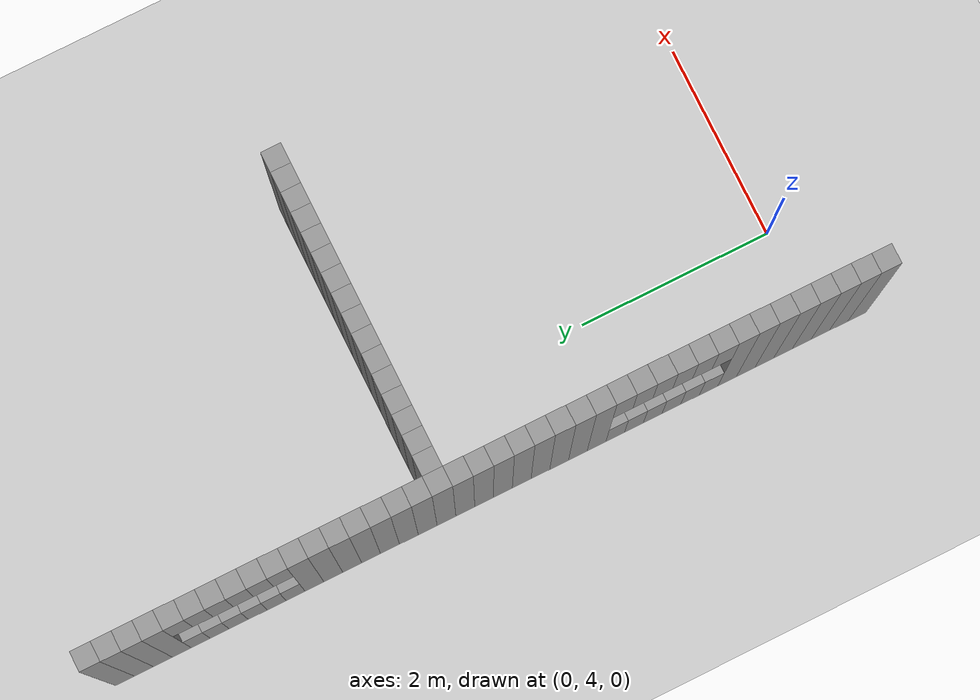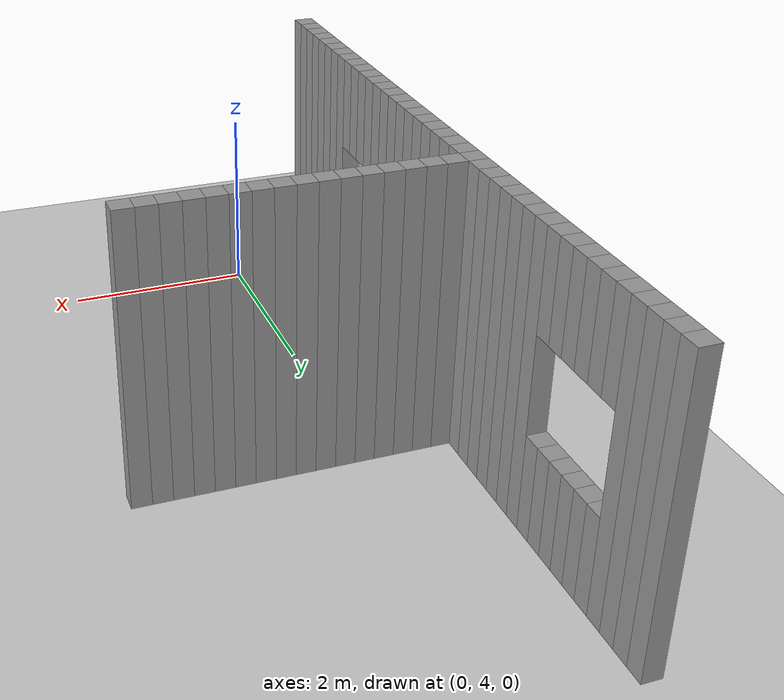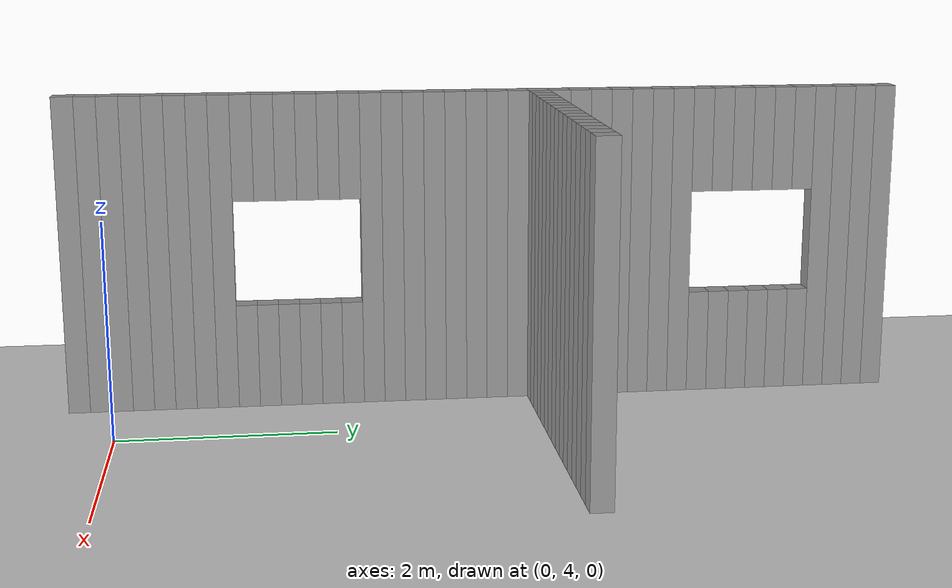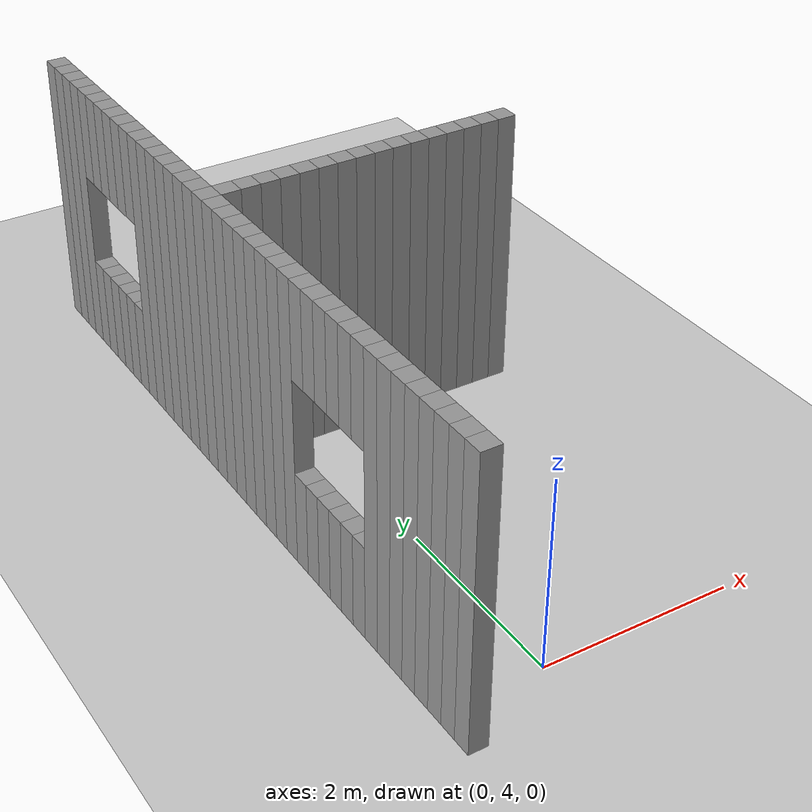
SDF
<sdf version="1.7">
 <world name="default">
  <model name="ground_plane">
   <static>1</static>
   <link name="link">
    <collision name="collision">
     <geometry><plane><normal>0 0 1</normal><size>100 100</size></plane></geometry>
     <surface>
      <contact><collide_bitmask>65535</collide_bitmask></contact>
      <friction><ode><mu>100</mu><mu2>50</mu2></ode></friction>
     </surface>
    </collision>
    <visual name="visual">
     <cast_shadows>0</cast_shadows>
     <geometry><plane><normal>0 0 1</normal><size>100 100</size></plane></geometry>
     <material>
      <script><uri>file://media/materials/scripts/gazebo.material</uri><name>Gazebo/Grey</name></script>
     </material>
    </visual>
   </link>
  </model>
  <model name="05222">
   <pose>-1 -1 0 0 -0 0</pose>
   <link name="Wall_286">
    <collision name="Wall_286_Collision">
     <geometry><box><size>0.2 0.2 3</size></box></geometry>
     <pose>0 0 1.5 0 -0 0</pose>
    </collision>
    <visual name="Wall_286_Visual">
     <pose>0 0 1.5 0 -0 0</pose>
     <geometry><box><size>0.2 0.2 3</size></box></geometry>
     <material>
      <script><uri>file://media/materials/scripts/gazebo.material</uri><name>Gazebo/Grey</name></script>
      <ambient>1 1 1 1</ambient>
     </material>
     <meta><layer>0</layer></meta>
    </visual>
    <pose>0.0 4.6000000000000005 0 0 -0 0</pose>
   </link>
   <link name="Wall_289">
    <collision name="Wall_289_Collision">
     <geometry><box><size>0.2 0.2 3</size></box></geometry>
     <pose>0 0 1.5 0 -0 0</pose>
    </collision>
    <visual name="Wall_289_Visual">
     <pose>0 0 1.5 0 -0 0</pose>
     <geometry><box><size>0.2 0.2 3</size></box></geometry>
     <material>
      <script><uri>file://media/materials/scripts/gazebo.material</uri><name>Gazebo/Grey</name></script>
      <ambient>1 1 1 1</ambient>
     </material>
     <meta><layer>0</layer></meta>
    </visual>
    <pose>0.0 4.800000000000001 0 0 -0 0</pose>
   </link>
   <link name="Wall_292">
    <collision name="Wall_292_Collision">
     <geometry><box><size>0.2 0.2 3</size></box></geometry>
     <pose>0 0 1.5 0 -0 0</pose>
    </collision>
    <visual name="Wall_292_Visual">
     <pose>0 0 1.5 0 -0 0</pose>
     <geometry><box><size>0.2 0.2 3</size></box></geometry>
     <material>
      <script><uri>file://media/materials/scripts/gazebo.material</uri><name>Gazebo/Grey</name></script>
      <ambient>1 1 1 1</ambient>
     </material>
     <meta><layer>0</layer></meta>
    </visual>
    <pose>0.0 5.0 0 0 -0 0</pose>
   </link>
   <link name="Wall_295">
    <collision name="Wall_295_Collision">
     <geometry><box><size>0.2 0.2 3</size></box></geometry>
     <pose>0 0 1.5 0 -0 0</pose>
    </collision>
    <visual name="Wall_295_Visual">
     <pose>0 0 1.5 0 -0 0</pose>
     <geometry><box><size>0.2 0.2 3</size></box></geometry>
     <material>
      <script><uri>file://media/materials/scripts/gazebo.material</uri><name>Gazebo/Grey</name></script>
      <ambient>1 1 1 1</ambient>
     </material>
     <meta><layer>0</layer></meta>
    </visual>
    <pose>0.0 5.2 0 0 -0 0</pose>
   </link>
   <link name="Wall_298">
    <collision name="Wall_298_Collision">
     <geometry><box><size>0.2 0.2 3</size></box></geometry>
     <pose>0 0 1.5 0 -0 0</pose>
    </collision>
    <visual name="Wall_298_Visual">
     <pose>0 0 1.5 0 -0 0</pose>
     <geometry><box><size>0.2 0.2 3</size></box></geometry>
     <material>
      <script><uri>file://media/materials/scripts/gazebo.material</uri><name>Gazebo/Grey</name></script>
      <ambient>1 1 1 1</ambient>
     </material>
     <meta><layer>0</layer></meta>
    </visual>
    <pose>0.0 5.4 0 0 -0 0</pose>
   </link>
   <link name="Wall_301">
    <collision name="Wall_301_Collision">
     <geometry><box><size>0.2 0.2 3</size></box></geometry>
     <pose>0 0 1.5 0 -0 0</pose>
    </collision>
    <visual name="Wall_301_Visual">
     <pose>0 0 1.5 0 -0 0</pose>
     <geometry><box><size>0.2 0.2 3</size></box></geometry>
     <material>
      <script><uri>file://media/materials/scripts/gazebo.material</uri><name>Gazebo/Grey</name></script>
      <ambient>1 1 1 1</ambient>
     </material>
     <meta><layer>0</layer></meta>
    </visual>
    <pose>0.0 5.6000000000000005 0 0 -0 0</pose>
   </link>
   <link name="Wall_303">
    <collision name="Wall_303_Collision">
     <geometry><box><size>0.2 0.2 3</size></box></geometry>
     <pose>0 0 1.5 0 -0 0</pose>
    </collision>
    <visual name="Wall_303_Visual">
     <pose>0 0 1.5 0 -0 0</pose>
     <geometry><box><size>0.2 0.2 3</size></box></geometry>
     <material>
      <script><uri>file://media/materials/scripts/gazebo.material</uri><name>Gazebo/Grey</name></script>
      <ambient>1 1 1 1</ambient>
     </material>
     <meta><layer>0</layer></meta>
    </visual>
    <pose>0.0 5.800000000000001 0 0 -0 0</pose>
   </link>
   <link name="Wall_305">
    <collision name="Wall_305_Collision">
     <geometry><box><size>0.2 0.2 3</size></box></geometry>
     <pose>0 0 1.5 0 -0 0</pose>
    </collision>
    <visual name="Wall_305_Visual">
     <pose>0 0 1.5 0 -0 0</pose>
     <geometry><box><size>0.2 0.2 3</size></box></geometry>
     <material>
      <script><uri>file://media/materials/scripts/gazebo.material</uri><name>Gazebo/Grey</name></script>
      <ambient>1 1 1 1</ambient>
     </material>
     <meta><layer>0</layer></meta>
    </visual>
    <pose>0.0 6.0 0 0 -0 0</pose>
   </link>
   <link name="Wall_307">
    <collision name="Wall_307_Collision">
     <geometry><box><size>0.2 0.2 1.0</size></box></geometry>
     <pose>0 0 0.5 0 -0 0</pose>
    </collision>
    <visual name="Wall_307_Visual">
     <pose>0 0 0.5 0 -0 0</pose>
     <geometry><box><size>0.2 0.2 1.0</size></box></geometry>
     <material>
      <script><uri>file://media/materials/scripts/gazebo.material</uri><name>Gazebo/Grey</name></script>
      <ambient>1 1 1 1</ambient>
     </material>
     <meta><layer>0</layer></meta>
    </visual>
    <pose>0.0 6.2 0 0 -0 0</pose>
   </link>
   <link name="Wall_308">
    <collision name="Wall_308_Collision">
     <geometry><box><size>0.2 0.2 1.0</size></box></geometry>
     <pose>0 0 2.5 0 -0 0</pose>
    </collision>
    <visual name="Wall_308_Visual">
     <pose>0 0 2.5 0 -0 0</pose>
     <geometry><box><size>0.2 0.2 1.0</size></box></geometry>
     <material>
      <script><uri>file://media/materials/scripts/gazebo.material</uri><name>Gazebo/Grey</name></script>
      <ambient>1 1 1 1</ambient>
     </material>
     <meta><layer>0</layer></meta>
    </visual>
    <pose>0.0 6.2 0 0 -0 0</pose>
   </link>
   <link name="Window_307">
    <collision name="Window_307_Collision">
     <geometry><box><size>0.2 0.2 1.0</size></box></geometry>
     <pose>0 0 1.5 0 -0 0</pose>
    </collision>
    <visual name="Wall_308_Visual">
     <pose>0 0 2.5 0 -0 0</pose>
     <geometry><box><size>0.2 0.2 1.0</size></box></geometry>
     <material>
      <script><uri>file://media/materials/scripts/gazebo.material</uri><name>Gazebo/Grey</name></script>
      <ambient>1 1 1 1</ambient>
     </material>
     <meta><layer>0</layer></meta>
    </visual>
    <pose>0.0 6.2 0 0 -0 0</pose>
   </link>
   <link name="Wall_329">
    <collision name="Wall_329_Collision">
     <geometry><box><size>0.2 0.2 1.0</size></box></geometry>
     <pose>0 0 0.5 0 -0 0</pose>
    </collision>
    <visual name="Wall_329_Visual">
     <pose>0 0 0.5 0 -0 0</pose>
     <geometry><box><size>0.2 0.2 1.0</size></box></geometry>
     <material>
      <script><uri>file://media/materials/scripts/gazebo.material</uri><name>Gazebo/Grey</name></script>
      <ambient>1 1 1 1</ambient>
     </material>
     <meta><layer>0</layer></meta>
    </visual>
    <pose>0.0 6.4 0 0 -0 0</pose>
   </link>
   <link name="Wall_330">
    <collision name="Wall_330_Collision">
     <geometry><box><size>0.2 0.2 1.0</size></box></geometry>
     <pose>0 0 2.5 0 -0 0</pose>
    </collision>
    <visual name="Wall_330_Visual">
     <pose>0 0 2.5 0 -0 0</pose>
     <geometry><box><size>0.2 0.2 1.0</size></box></geometry>
     <material>
      <script><uri>file://media/materials/scripts/gazebo.material</uri><name>Gazebo/Grey</name></script>
      <ambient>1 1 1 1</ambient>
     </material>
     <meta><layer>0</layer></meta>
    </visual>
    <pose>0.0 6.4 0 0 -0 0</pose>
   </link>
   <link name="Window_329">
    <collision name="Window_329_Collision">
     <geometry><box><size>0.2 0.2 1.0</size></box></geometry>
     <pose>0 0 1.5 0 -0 0</pose>
    </collision>
    <visual name="Wall_330_Visual">
     <pose>0 0 2.5 0 -0 0</pose>
     <geometry><box><size>0.2 0.2 1.0</size></box></geometry>
     <material>
      <script><uri>file://media/materials/scripts/gazebo.material</uri><name>Gazebo/Grey</name></script>
      <ambient>1 1 1 1</ambient>
     </material>
     <meta><layer>0</layer></meta>
    </visual>
    <pose>0.0 6.4 0 0 -0 0</pose>
   </link>
   <link name="Wall_333">
    <collision name="Wall_333_Collision">
     <geometry><box><size>0.2 0.2 1.0</size></box></geometry>
     <pose>0 0 0.5 0 -0 0</pose>
    </collision>
    <visual name="Wall_333_Visual">
     <pose>0 0 0.5 0 -0 0</pose>
     <geometry><box><size>0.2 0.2 1.0</size></box></geometry>
     <material>
      <script><uri>file://media/materials/scripts/gazebo.material</uri><name>Gazebo/Grey</name></script>
      <ambient>1 1 1 1</ambient>
     </material>
     <meta><layer>0</layer></meta>
    </visual>
    <pose>0.0 6.6000000000000005 0 0 -0 0</pose>
   </link>
   <link name="Wall_334">
    <collision name="Wall_334_Collision">
     <geometry><box><size>0.2 0.2 1.0</size></box></geometry>
     <pose>0 0 2.5 0 -0 0</pose>
    </collision>
    <visual name="Wall_334_Visual">
     <pose>0 0 2.5 0 -0 0</pose>
     <geometry><box><size>0.2 0.2 1.0</size></box></geometry>
     <material>
      <script><uri>file://media/materials/scripts/gazebo.material</uri><name>Gazebo/Grey</name></script>
      <ambient>1 1 1 1</ambient>
     </material>
     <meta><layer>0</layer></meta>
    </visual>
    <pose>0.0 6.6000000000000005 0 0 -0 0</pose>
   </link>
   <link name="Window_333">
    <collision name="Window_333_Collision">
     <geometry><box><size>0.2 0.2 1.0</size></box></geometry>
     <pose>0 0 1.5 0 -0 0</pose>
    </collision>
    <visual name="Wall_334_Visual">
     <pose>0 0 2.5 0 -0 0</pose>
     <geometry><box><size>0.2 0.2 1.0</size></box></geometry>
     <material>
      <script><uri>file://media/materials/scripts/gazebo.material</uri><name>Gazebo/Grey</name></script>
      <ambient>1 1 1 1</ambient>
     </material>
     <meta><layer>0</layer></meta>
    </visual>
    <pose>0.0 6.6000000000000005 0 0 -0 0</pose>
   </link>
   <link name="Wall_337">
    <collision name="Wall_337_Collision">
     <geometry><box><size>0.2 0.2 1.0</size></box></geometry>
     <pose>0 0 0.5 0 -0 0</pose>
    </collision>
    <visual name="Wall_337_Visual">
     <pose>0 0 0.5 0 -0 0</pose>
     <geometry><box><size>0.2 0.2 1.0</size></box></geometry>
     <material>
      <script><uri>file://media/materials/scripts/gazebo.material</uri><name>Gazebo/Grey</name></script>
      <ambient>1 1 1 1</ambient>
     </material>
     <meta><layer>0</layer></meta>
    </visual>
    <pose>0.0 6.800000000000001 0 0 -0 0</pose>
   </link>
   <link name="Wall_338">
    <collision name="Wall_338_Collision">
     <geometry><box><size>0.2 0.2 1.0</size></box></geometry>
     <pose>0 0 2.5 0 -0 0</pose>
    </collision>
    <visual name="Wall_338_Visual">
     <pose>0 0 2.5 0 -0 0</pose>
     <geometry><box><size>0.2 0.2 1.0</size></box></geometry>
     <material>
      <script><uri>file://media/materials/scripts/gazebo.material</uri><name>Gazebo/Grey</name></script>
      <ambient>1 1 1 1</ambient>
     </material>
     <meta><layer>0</layer></meta>
    </visual>
    <pose>0.0 6.800000000000001 0 0 -0 0</pose>
   </link>
   <link name="Window_337">
    <collision name="Window_337_Collision">
     <geometry><box><size>0.2 0.2 1.0</size></box></geometry>
     <pose>0 0 1.5 0 -0 0</pose>
    </collision>
    <visual name="Wall_338_Visual">
     <pose>0 0 2.5 0 -0 0</pose>
     <geometry><box><size>0.2 0.2 1.0</size></box></geometry>
     <material>
      <script><uri>file://media/materials/scripts/gazebo.material</uri><name>Gazebo/Grey</name></script>
      <ambient>1 1 1 1</ambient>
     </material>
     <meta><layer>0</layer></meta>
    </visual>
    <pose>0.0 6.800000000000001 0 0 -0 0</pose>
   </link>
   <link name="Wall_342">
    <collision name="Wall_342_Collision">
     <geometry><box><size>0.2 0.2 1.0</size></box></geometry>
     <pose>0 0 0.5 0 -0 0</pose>
    </collision>
    <visual name="Wall_342_Visual">
     <pose>0 0 0.5 0 -0 0</pose>
     <geometry><box><size>0.2 0.2 1.0</size></box></geometry>
     <material>
      <script><uri>file://media/materials/scripts/gazebo.material</uri><name>Gazebo/Grey</name></script>
      <ambient>1 1 1 1</ambient>
     </material>
     <meta><layer>0</layer></meta>
    </visual>
    <pose>0.0 7.0 0 0 -0 0</pose>
   </link>
   <link name="Wall_343">
    <collision name="Wall_343_Collision">
     <geometry><box><size>0.2 0.2 1.0</size></box></geometry>
     <pose>0 0 2.5 0 -0 0</pose>
    </collision>
    <visual name="Wall_343_Visual">
     <pose>0 0 2.5 0 -0 0</pose>
     <geometry><box><size>0.2 0.2 1.0</size></box></geometry>
     <material>
      <script><uri>file://media/materials/scripts/gazebo.material</uri><name>Gazebo/Grey</name></script>
      <ambient>1 1 1 1</ambient>
     </material>
     <meta><layer>0</layer></meta>
    </visual>
    <pose>0.0 7.0 0 0 -0 0</pose>
   </link>
   <link name="Window_342">
    <collision name="Window_342_Collision">
     <geometry><box><size>0.2 0.2 1.0</size></box></geometry>
     <pose>0 0 1.5 0 -0 0</pose>
    </collision>
    <visual name="Wall_343_Visual">
     <pose>0 0 2.5 0 -0 0</pose>
     <geometry><box><size>0.2 0.2 1.0</size></box></geometry>
     <material>
      <script><uri>file://media/materials/scripts/gazebo.material</uri><name>Gazebo/Grey</name></script>
      <ambient>1 1 1 1</ambient>
     </material>
     <meta><layer>0</layer></meta>
    </visual>
    <pose>0.0 7.0 0 0 -0 0</pose>
   </link>
   <link name="Wall_347">
    <collision name="Wall_347_Collision">
     <geometry><box><size>0.2 0.2 1.0</size></box></geometry>
     <pose>0 0 0.5 0 -0 0</pose>
    </collision>
    <visual name="Wall_347_Visual">
     <pose>0 0 0.5 0 -0 0</pose>
     <geometry><box><size>0.2 0.2 1.0</size></box></geometry>
     <material>
      <script><uri>file://media/materials/scripts/gazebo.material</uri><name>Gazebo/Grey</name></script>
      <ambient>1 1 1 1</ambient>
     </material>
     <meta><layer>0</layer></meta>
    </visual>
    <pose>0.0 7.2 0 0 -0 0</pose>
   </link>
   <link name="Wall_348">
    <collision name="Wall_348_Collision">
     <geometry><box><size>0.2 0.2 1.0</size></box></geometry>
     <pose>0 0 2.5 0 -0 0</pose>
    </collision>
    <visual name="Wall_348_Visual">
     <pose>0 0 2.5 0 -0 0</pose>
     <geometry><box><size>0.2 0.2 1.0</size></box></geometry>
     <material>
      <script><uri>file://media/materials/scripts/gazebo.material</uri><name>Gazebo/Grey</name></script>
      <ambient>1 1 1 1</ambient>
     </material>
     <meta><layer>0</layer></meta>
    </visual>
    <pose>0.0 7.2 0 0 -0 0</pose>
   </link>
   <link name="Window_347">
    <collision name="Window_347_Collision">
     <geometry><box><size>0.2 0.2 1.0</size></box></geometry>
     <pose>0 0 1.5 0 -0 0</pose>
    </collision>
    <visual name="Wall_348_Visual">
     <pose>0 0 2.5 0 -0 0</pose>
     <geometry><box><size>0.2 0.2 1.0</size></box></geometry>
     <material>
      <script><uri>file://media/materials/scripts/gazebo.material</uri><name>Gazebo/Grey</name></script>
      <ambient>1 1 1 1</ambient>
     </material>
     <meta><layer>0</layer></meta>
    </visual>
    <pose>0.0 7.2 0 0 -0 0</pose>
   </link>
   <link name="Wall_351">
    <collision name="Wall_351_Collision">
     <geometry><box><size>0.2 0.2 3</size></box></geometry>
     <pose>0 0 1.5 0 -0 0</pose>
    </collision>
    <visual name="Wall_351_Visual">
     <pose>0 0 1.5 0 -0 0</pose>
     <geometry><box><size>0.2 0.2 3</size></box></geometry>
     <material>
      <script><uri>file://media/materials/scripts/gazebo.material</uri><name>Gazebo/Grey</name></script>
      <ambient>1 1 1 1</ambient>
     </material>
     <meta><layer>0</layer></meta>
    </visual>
    <pose>0.0 7.4 0 0 -0 0</pose>
   </link>
   <link name="Wall_354">
    <collision name="Wall_354_Collision">
     <geometry><box><size>0.2 0.2 3</size></box></geometry>
     <pose>0 0 1.5 0 -0 0</pose>
    </collision>
    <visual name="Wall_354_Visual">
     <pose>0 0 1.5 0 -0 0</pose>
     <geometry><box><size>0.2 0.2 3</size></box></geometry>
     <material>
      <script><uri>file://media/materials/scripts/gazebo.material</uri><name>Gazebo/Grey</name></script>
      <ambient>1 1 1 1</ambient>
     </material>
     <meta><layer>0</layer></meta>
    </visual>
    <pose>0.0 7.6000000000000005 0 0 -0 0</pose>
   </link>
   <link name="Wall_357">
    <collision name="Wall_357_Collision">
     <geometry><box><size>0.2 0.2 3</size></box></geometry>
     <pose>0 0 1.5 0 -0 0</pose>
    </collision>
    <visual name="Wall_357_Visual">
     <pose>0 0 1.5 0 -0 0</pose>
     <geometry><box><size>0.2 0.2 3</size></box></geometry>
     <material>
      <script><uri>file://media/materials/scripts/gazebo.material</uri><name>Gazebo/Grey</name></script>
      <ambient>1 1 1 1</ambient>
     </material>
     <meta><layer>0</layer></meta>
    </visual>
    <pose>0.0 7.800000000000001 0 0 -0 0</pose>
   </link>
   <link name="Wall_361">
    <collision name="Wall_361_Collision">
     <geometry><box><size>0.2 0.2 3</size></box></geometry>
     <pose>0 0 1.5 0 -0 0</pose>
    </collision>
    <visual name="Wall_361_Visual">
     <pose>0 0 1.5 0 -0 0</pose>
     <geometry><box><size>0.2 0.2 3</size></box></geometry>
     <material>
      <script><uri>file://media/materials/scripts/gazebo.material</uri><name>Gazebo/Grey</name></script>
      <ambient>1 1 1 1</ambient>
     </material>
     <meta><layer>0</layer></meta>
    </visual>
    <pose>0.0 8.0 0 0 -0 0</pose>
   </link>
   <link name="Wall_365">
    <collision name="Wall_365_Collision">
     <geometry><box><size>0.2 0.2 3</size></box></geometry>
     <pose>0 0 1.5 0 -0 0</pose>
    </collision>
    <visual name="Wall_365_Visual">
     <pose>0 0 1.5 0 -0 0</pose>
     <geometry><box><size>0.2 0.2 3</size></box></geometry>
     <material>
      <script><uri>file://media/materials/scripts/gazebo.material</uri><name>Gazebo/Grey</name></script>
      <ambient>1 1 1 1</ambient>
     </material>
     <meta><layer>0</layer></meta>
    </visual>
    <pose>0.0 8.200000000000001 0 0 -0 0</pose>
   </link>
   <link name="Wall_369">
    <collision name="Wall_369_Collision">
     <geometry><box><size>0.2 0.2 3</size></box></geometry>
     <pose>0 0 1.5 0 -0 0</pose>
    </collision>
    <visual name="Wall_369_Visual">
     <pose>0 0 1.5 0 -0 0</pose>
     <geometry><box><size>0.2 0.2 3</size></box></geometry>
     <material>
      <script><uri>file://media/materials/scripts/gazebo.material</uri><name>Gazebo/Grey</name></script>
      <ambient>1 1 1 1</ambient>
     </material>
     <meta><layer>0</layer></meta>
    </visual>
    <pose>0.0 8.4 0 0 -0 0</pose>
   </link>
   <link name="Wall_373">
    <collision name="Wall_373_Collision">
     <geometry><box><size>0.2 0.2 3</size></box></geometry>
     <pose>0 0 1.5 0 -0 0</pose>
    </collision>
    <visual name="Wall_373_Visual">
     <pose>0 0 1.5 0 -0 0</pose>
     <geometry><box><size>0.2 0.2 3</size></box></geometry>
     <material>
      <script><uri>file://media/materials/scripts/gazebo.material</uri><name>Gazebo/Grey</name></script>
      <ambient>1 1 1 1</ambient>
     </material>
     <meta><layer>0</layer></meta>
    </visual>
    <pose>0.0 8.6 0 0 -0 0</pose>
   </link>
   <link name="Wall_377">
    <collision name="Wall_377_Collision">
     <geometry><box><size>0.2 0.2 3</size></box></geometry>
     <pose>0 0 1.5 0 -0 0</pose>
    </collision>
    <visual name="Wall_377_Visual">
     <pose>0 0 1.5 0 -0 0</pose>
     <geometry><box><size>0.2 0.2 3</size></box></geometry>
     <material>
      <script><uri>file://media/materials/scripts/gazebo.material</uri><name>Gazebo/Grey</name></script>
      <ambient>1 1 1 1</ambient>
     </material>
     <meta><layer>0</layer></meta>
    </visual>
    <pose>0.0 8.8 0 0 -0 0</pose>
   </link>
   <link name="Wall_420">
    <collision name="Wall_420_Collision">
     <geometry><box><size>0.2 0.2 3</size></box></geometry>
     <pose>0 0 1.5 0 -0 0</pose>
    </collision>
    <visual name="Wall_420_Visual">
     <pose>0 0 1.5 0 -0 0</pose>
     <geometry><box><size>0.2 0.2 3</size></box></geometry>
     <material>
      <script><uri>file://media/materials/scripts/gazebo.material</uri><name>Gazebo/Grey</name></script>
      <ambient>1 1 1 1</ambient>
     </material>
     <meta><layer>0</layer></meta>
    </visual>
    <pose>0.0 9.0 0 0 -0 0</pose>
   </link>
   <link name="Wall_421">
    <collision name="Wall_421_Collision">
     <geometry><box><size>0.2 0.2 3</size></box></geometry>
     <pose>0 0 1.5 0 -0 0</pose>
    </collision>
    <visual name="Wall_421_Visual">
     <pose>0 0 1.5 0 -0 0</pose>
     <geometry><box><size>0.2 0.2 3</size></box></geometry>
     <material>
      <script><uri>file://media/materials/scripts/gazebo.material</uri><name>Gazebo/Grey</name></script>
      <ambient>1 1 1 1</ambient>
     </material>
     <meta><layer>0</layer></meta>
    </visual>
    <pose>0.2 9.0 0 0 -0 0</pose>
   </link>
   <link name="Wall_422">
    <collision name="Wall_422_Collision">
     <geometry><box><size>0.2 0.2 3</size></box></geometry>
     <pose>0 0 1.5 0 -0 0</pose>
    </collision>
    <visual name="Wall_422_Visual">
     <pose>0 0 1.5 0 -0 0</pose>
     <geometry><box><size>0.2 0.2 3</size></box></geometry>
     <material>
      <script><uri>file://media/materials/scripts/gazebo.material</uri><name>Gazebo/Grey</name></script>
      <ambient>1 1 1 1</ambient>
     </material>
     <meta><layer>0</layer></meta>
    </visual>
    <pose>0.4 9.0 0 0 -0 0</pose>
   </link>
   <link name="Wall_423">
    <collision name="Wall_423_Collision">
     <geometry><box><size>0.2 0.2 3</size></box></geometry>
     <pose>0 0 1.5 0 -0 0</pose>
    </collision>
    <visual name="Wall_423_Visual">
     <pose>0 0 1.5 0 -0 0</pose>
     <geometry><box><size>0.2 0.2 3</size></box></geometry>
     <material>
      <script><uri>file://media/materials/scripts/gazebo.material</uri><name>Gazebo/Grey</name></script>
      <ambient>1 1 1 1</ambient>
     </material>
     <meta><layer>0</layer></meta>
    </visual>
    <pose>0.6000000000000001 9.0 0 0 -0 0</pose>
   </link>
   <link name="Wall_424">
    <collision name="Wall_424_Collision">
     <geometry><box><size>0.2 0.2 3</size></box></geometry>
     <pose>0 0 1.5 0 -0 0</pose>
    </collision>
    <visual name="Wall_424_Visual">
     <pose>0 0 1.5 0 -0 0</pose>
     <geometry><box><size>0.2 0.2 3</size></box></geometry>
     <material>
      <script><uri>file://media/materials/scripts/gazebo.material</uri><name>Gazebo/Grey</name></script>
      <ambient>1 1 1 1</ambient>
     </material>
     <meta><layer>0</layer></meta>
    </visual>
    <pose>0.8 9.0 0 0 -0 0</pose>
   </link>
   <link name="Wall_425">
    <collision name="Wall_425_Collision">
     <geometry><box><size>0.2 0.2 3</size></box></geometry>
     <pose>0 0 1.5 0 -0 0</pose>
    </collision>
    <visual name="Wall_425_Visual">
     <pose>0 0 1.5 0 -0 0</pose>
     <geometry><box><size>0.2 0.2 3</size></box></geometry>
     <material>
      <script><uri>file://media/materials/scripts/gazebo.material</uri><name>Gazebo/Grey</name></script>
      <ambient>1 1 1 1</ambient>
     </material>
     <meta><layer>0</layer></meta>
    </visual>
    <pose>1.0 9.0 0 0 -0 0</pose>
   </link>
   <link name="Wall_426">
    <collision name="Wall_426_Collision">
     <geometry><box><size>0.2 0.2 3</size></box></geometry>
     <pose>0 0 1.5 0 -0 0</pose>
    </collision>
    <visual name="Wall_426_Visual">
     <pose>0 0 1.5 0 -0 0</pose>
     <geometry><box><size>0.2 0.2 3</size></box></geometry>
     <material>
      <script><uri>file://media/materials/scripts/gazebo.material</uri><name>Gazebo/Grey</name></script>
      <ambient>1 1 1 1</ambient>
     </material>
     <meta><layer>0</layer></meta>
    </visual>
    <pose>1.2000000000000002 9.0 0 0 -0 0</pose>
   </link>
   <link name="Wall_427">
    <collision name="Wall_427_Collision">
     <geometry><box><size>0.2 0.2 3</size></box></geometry>
     <pose>0 0 1.5 0 -0 0</pose>
    </collision>
    <visual name="Wall_427_Visual">
     <pose>0 0 1.5 0 -0 0</pose>
     <geometry><box><size>0.2 0.2 3</size></box></geometry>
     <material>
      <script><uri>file://media/materials/scripts/gazebo.material</uri><name>Gazebo/Grey</name></script>
      <ambient>1 1 1 1</ambient>
     </material>
     <meta><layer>0</layer></meta>
    </visual>
    <pose>1.4000000000000001 9.0 0 0 -0 0</pose>
   </link>
   <link name="Wall_428">
    <collision name="Wall_428_Collision">
     <geometry><box><size>0.2 0.2 3</size></box></geometry>
     <pose>0 0 1.5 0 -0 0</pose>
    </collision>
    <visual name="Wall_428_Visual">
     <pose>0 0 1.5 0 -0 0</pose>
     <geometry><box><size>0.2 0.2 3</size></box></geometry>
     <material>
      <script><uri>file://media/materials/scripts/gazebo.material</uri><name>Gazebo/Grey</name></script>
      <ambient>1 1 1 1</ambient>
     </material>
     <meta><layer>0</layer></meta>
    </visual>
    <pose>1.6 9.0 0 0 -0 0</pose>
   </link>
   <link name="Wall_429">
    <collision name="Wall_429_Collision">
     <geometry><box><size>0.2 0.2 3</size></box></geometry>
     <pose>0 0 1.5 0 -0 0</pose>
    </collision>
    <visual name="Wall_429_Visual">
     <pose>0 0 1.5 0 -0 0</pose>
     <geometry><box><size>0.2 0.2 3</size></box></geometry>
     <material>
      <script><uri>file://media/materials/scripts/gazebo.material</uri><name>Gazebo/Grey</name></script>
      <ambient>1 1 1 1</ambient>
     </material>
     <meta><layer>0</layer></meta>
    </visual>
    <pose>1.8 9.0 0 0 -0 0</pose>
   </link>
   <link name="Wall_430">
    <collision name="Wall_430_Collision">
     <geometry><box><size>0.2 0.2 3</size></box></geometry>
     <pose>0 0 1.5 0 -0 0</pose>
    </collision>
    <visual name="Wall_430_Visual">
     <pose>0 0 1.5 0 -0 0</pose>
     <geometry><box><size>0.2 0.2 3</size></box></geometry>
     <material>
      <script><uri>file://media/materials/scripts/gazebo.material</uri><name>Gazebo/Grey</name></script>
      <ambient>1 1 1 1</ambient>
     </material>
     <meta><layer>0</layer></meta>
    </visual>
    <pose>2.0 9.0 0 0 -0 0</pose>
   </link>
   <link name="Wall_431">
    <collision name="Wall_431_Collision">
     <geometry><box><size>0.2 0.2 3</size></box></geometry>
     <pose>0 0 1.5 0 -0 0</pose>
    </collision>
    <visual name="Wall_431_Visual">
     <pose>0 0 1.5 0 -0 0</pose>
     <geometry><box><size>0.2 0.2 3</size></box></geometry>
     <material>
      <script><uri>file://media/materials/scripts/gazebo.material</uri><name>Gazebo/Grey</name></script>
      <ambient>1 1 1 1</ambient>
     </material>
     <meta><layer>0</layer></meta>
    </visual>
    <pose>2.2 9.0 0 0 -0 0</pose>
   </link>
   <link name="Wall_432">
    <collision name="Wall_432_Collision">
     <geometry><box><size>0.2 0.2 3</size></box></geometry>
     <pose>0 0 1.5 0 -0 0</pose>
    </collision>
    <visual name="Wall_432_Visual">
     <pose>0 0 1.5 0 -0 0</pose>
     <geometry><box><size>0.2 0.2 3</size></box></geometry>
     <material>
      <script><uri>file://media/materials/scripts/gazebo.material</uri><name>Gazebo/Grey</name></script>
      <ambient>1 1 1 1</ambient>
     </material>
     <meta><layer>0</layer></meta>
    </visual>
    <pose>2.4000000000000004 9.0 0 0 -0 0</pose>
   </link>
   <link name="Wall_433">
    <collision name="Wall_433_Collision">
     <geometry><box><size>0.2 0.2 3</size></box></geometry>
     <pose>0 0 1.5 0 -0 0</pose>
    </collision>
    <visual name="Wall_433_Visual">
     <pose>0 0 1.5 0 -0 0</pose>
     <geometry><box><size>0.2 0.2 3</size></box></geometry>
     <material>
      <script><uri>file://media/materials/scripts/gazebo.material</uri><name>Gazebo/Grey</name></script>
      <ambient>1 1 1 1</ambient>
     </material>
     <meta><layer>0</layer></meta>
    </visual>
    <pose>2.6 9.0 0 0 -0 0</pose>
   </link>
   <link name="Wall_434">
    <collision name="Wall_434_Collision">
     <geometry><box><size>0.2 0.2 3</size></box></geometry>
     <pose>0 0 1.5 0 -0 0</pose>
    </collision>
    <visual name="Wall_434_Visual">
     <pose>0 0 1.5 0 -0 0</pose>
     <geometry><box><size>0.2 0.2 3</size></box></geometry>
     <material>
      <script><uri>file://media/materials/scripts/gazebo.material</uri><name>Gazebo/Grey</name></script>
      <ambient>1 1 1 1</ambient>
     </material>
     <meta><layer>0</layer></meta>
    </visual>
    <pose>2.8000000000000003 9.0 0 0 -0 0</pose>
   </link>
   <link name="Wall_435">
    <collision name="Wall_435_Collision">
     <geometry><box><size>0.2 0.2 3</size></box></geometry>
     <pose>0 0 1.5 0 -0 0</pose>
    </collision>
    <visual name="Wall_435_Visual">
     <pose>0 0 1.5 0 -0 0</pose>
     <geometry><box><size>0.2 0.2 3</size></box></geometry>
     <material>
      <script><uri>file://media/materials/scripts/gazebo.material</uri><name>Gazebo/Grey</name></script>
      <ambient>1 1 1 1</ambient>
     </material>
     <meta><layer>0</layer></meta>
    </visual>
    <pose>3.0 9.0 0 0 -0 0</pose>
   </link>
   <link name="Wall_436">
    <collision name="Wall_436_Collision">
     <geometry><box><size>0.2 0.2 3</size></box></geometry>
     <pose>0 0 1.5 0 -0 0</pose>
    </collision>
    <visual name="Wall_436_Visual">
     <pose>0 0 1.5 0 -0 0</pose>
     <geometry><box><size>0.2 0.2 3</size></box></geometry>
     <material>
      <script><uri>file://media/materials/scripts/gazebo.material</uri><name>Gazebo/Grey</name></script>
      <ambient>1 1 1 1</ambient>
     </material>
     <meta><layer>0</layer></meta>
    </visual>
    <pose>3.2 9.0 0 0 -0 0</pose>
   </link>
   <link name="Wall_443">
    <collision name="Wall_443_Collision">
     <geometry><box><size>0.2 0.2 3</size></box></geometry>
     <pose>0 0 1.5 0 -0 0</pose>
    </collision>
    <visual name="Wall_443_Visual">
     <pose>0 0 1.5 0 -0 0</pose>
     <geometry><box><size>0.2 0.2 3</size></box></geometry>
     <material>
      <script><uri>file://media/materials/scripts/gazebo.material</uri><name>Gazebo/Grey</name></script>
      <ambient>1 1 1 1</ambient>
     </material>
     <meta><layer>0</layer></meta>
    </visual>
    <pose>0.0 9.200000000000001 0 0 -0 0</pose>
   </link>
   <link name="Wall_468">
    <collision name="Wall_468_Collision">
     <geometry><box><size>0.2 0.2 3</size></box></geometry>
     <pose>0 0 1.5 0 -0 0</pose>
    </collision>
    <visual name="Wall_468_Visual">
     <pose>0 0 1.5 0 -0 0</pose>
     <geometry><box><size>0.2 0.2 3</size></box></geometry>
     <material>
      <script><uri>file://media/materials/scripts/gazebo.material</uri><name>Gazebo/Grey</name></script>
      <ambient>1 1 1 1</ambient>
     </material>
     <meta><layer>0</layer></meta>
    </visual>
    <pose>0.0 9.4 0 0 -0 0</pose>
   </link>
   <link name="Wall_475">
    <collision name="Wall_475_Collision">
     <geometry><box><size>0.2 0.2 3</size></box></geometry>
     <pose>0 0 1.5 0 -0 0</pose>
    </collision>
    <visual name="Wall_475_Visual">
     <pose>0 0 1.5 0 -0 0</pose>
     <geometry><box><size>0.2 0.2 3</size></box></geometry>
     <material>
      <script><uri>file://media/materials/scripts/gazebo.material</uri><name>Gazebo/Grey</name></script>
      <ambient>1 1 1 1</ambient>
     </material>
     <meta><layer>0</layer></meta>
    </visual>
    <pose>0.0 9.600000000000001 0 0 -0 0</pose>
   </link>
   <link name="Wall_483">
    <collision name="Wall_483_Collision">
     <geometry><box><size>0.2 0.2 3</size></box></geometry>
     <pose>0 0 1.5 0 -0 0</pose>
    </collision>
    <visual name="Wall_483_Visual">
     <pose>0 0 1.5 0 -0 0</pose>
     <geometry><box><size>0.2 0.2 3</size></box></geometry>
     <material>
      <script><uri>file://media/materials/scripts/gazebo.material</uri><name>Gazebo/Grey</name></script>
      <ambient>1 1 1 1</ambient>
     </material>
     <meta><layer>0</layer></meta>
    </visual>
    <pose>0.0 9.8 0 0 -0 0</pose>
   </link>
   <link name="Wall_490">
    <collision name="Wall_490_Collision">
     <geometry><box><size>0.2 0.2 3</size></box></geometry>
     <pose>0 0 1.5 0 -0 0</pose>
    </collision>
    <visual name="Wall_490_Visual">
     <pose>0 0 1.5 0 -0 0</pose>
     <geometry><box><size>0.2 0.2 3</size></box></geometry>
     <material>
      <script><uri>file://media/materials/scripts/gazebo.material</uri><name>Gazebo/Grey</name></script>
      <ambient>1 1 1 1</ambient>
     </material>
     <meta><layer>0</layer></meta>
    </visual>
    <pose>0.0 10.0 0 0 -0 0</pose>
   </link>
   <link name="Wall_497">
    <collision name="Wall_497_Collision">
     <geometry><box><size>0.2 0.2 3</size></box></geometry>
     <pose>0 0 1.5 0 -0 0</pose>
    </collision>
    <visual name="Wall_497_Visual">
     <pose>0 0 1.5 0 -0 0</pose>
     <geometry><box><size>0.2 0.2 3</size></box></geometry>
     <material>
      <script><uri>file://media/materials/scripts/gazebo.material</uri><name>Gazebo/Grey</name></script>
      <ambient>1 1 1 1</ambient>
     </material>
     <meta><layer>0</layer></meta>
    </visual>
    <pose>0.0 10.200000000000001 0 0 -0 0</pose>
   </link>
   <link name="Wall_503">
    <collision name="Wall_503_Collision">
     <geometry><box><size>0.2 0.2 3</size></box></geometry>
     <pose>0 0 1.5 0 -0 0</pose>
    </collision>
    <visual name="Wall_503_Visual">
     <pose>0 0 1.5 0 -0 0</pose>
     <geometry><box><size>0.2 0.2 3</size></box></geometry>
     <material>
      <script><uri>file://media/materials/scripts/gazebo.material</uri><name>Gazebo/Grey</name></script>
      <ambient>1 1 1 1</ambient>
     </material>
     <meta><layer>0</layer></meta>
    </visual>
    <pose>0.0 10.4 0 0 -0 0</pose>
   </link>
   <link name="Wall_509">
    <collision name="Wall_509_Collision">
     <geometry><box><size>0.2 0.2 1.0</size></box></geometry>
     <pose>0 0 0.5 0 -0 0</pose>
    </collision>
    <visual name="Wall_509_Visual">
     <pose>0 0 0.5 0 -0 0</pose>
     <geometry><box><size>0.2 0.2 1.0</size></box></geometry>
     <material>
      <script><uri>file://media/materials/scripts/gazebo.material</uri><name>Gazebo/Grey</name></script>
      <ambient>1 1 1 1</ambient>
     </material>
     <meta><layer>0</layer></meta>
    </visual>
    <pose>0.0 10.600000000000001 0 0 -0 0</pose>
   </link>
   <link name="Wall_510">
    <collision name="Wall_510_Collision">
     <geometry><box><size>0.2 0.2 1.0</size></box></geometry>
     <pose>0 0 2.5 0 -0 0</pose>
    </collision>
    <visual name="Wall_510_Visual">
     <pose>0 0 2.5 0 -0 0</pose>
     <geometry><box><size>0.2 0.2 1.0</size></box></geometry>
     <material>
      <script><uri>file://media/materials/scripts/gazebo.material</uri><name>Gazebo/Grey</name></script>
      <ambient>1 1 1 1</ambient>
     </material>
     <meta><layer>0</layer></meta>
    </visual>
    <pose>0.0 10.600000000000001 0 0 -0 0</pose>
   </link>
   <link name="Window_509">
    <collision name="Window_509_Collision">
     <geometry><box><size>0.2 0.2 1.0</size></box></geometry>
     <pose>0 0 1.5 0 -0 0</pose>
    </collision>
    <visual name="Wall_510_Visual">
     <pose>0 0 2.5 0 -0 0</pose>
     <geometry><box><size>0.2 0.2 1.0</size></box></geometry>
     <material>
      <script><uri>file://media/materials/scripts/gazebo.material</uri><name>Gazebo/Grey</name></script>
      <ambient>1 1 1 1</ambient>
     </material>
     <meta><layer>0</layer></meta>
    </visual>
    <pose>0.0 10.600000000000001 0 0 -0 0</pose>
   </link>
   <link name="Wall_516">
    <collision name="Wall_516_Collision">
     <geometry><box><size>0.2 0.2 1.0</size></box></geometry>
     <pose>0 0 0.5 0 -0 0</pose>
    </collision>
    <visual name="Wall_516_Visual">
     <pose>0 0 0.5 0 -0 0</pose>
     <geometry><box><size>0.2 0.2 1.0</size></box></geometry>
     <material>
      <script><uri>file://media/materials/scripts/gazebo.material</uri><name>Gazebo/Grey</name></script>
      <ambient>1 1 1 1</ambient>
     </material>
     <meta><layer>0</layer></meta>
    </visual>
    <pose>0.0 10.8 0 0 -0 0</pose>
   </link>
   <link name="Wall_517">
    <collision name="Wall_517_Collision">
     <geometry><box><size>0.2 0.2 1.0</size></box></geometry>
     <pose>0 0 2.5 0 -0 0</pose>
    </collision>
    <visual name="Wall_517_Visual">
     <pose>0 0 2.5 0 -0 0</pose>
     <geometry><box><size>0.2 0.2 1.0</size></box></geometry>
     <material>
      <script><uri>file://media/materials/scripts/gazebo.material</uri><name>Gazebo/Grey</name></script>
      <ambient>1 1 1 1</ambient>
     </material>
     <meta><layer>0</layer></meta>
    </visual>
    <pose>0.0 10.8 0 0 -0 0</pose>
   </link>
   <link name="Window_516">
    <collision name="Window_516_Collision">
     <geometry><box><size>0.2 0.2 1.0</size></box></geometry>
     <pose>0 0 1.5 0 -0 0</pose>
    </collision>
    <visual name="Wall_517_Visual">
     <pose>0 0 2.5 0 -0 0</pose>
     <geometry><box><size>0.2 0.2 1.0</size></box></geometry>
     <material>
      <script><uri>file://media/materials/scripts/gazebo.material</uri><name>Gazebo/Grey</name></script>
      <ambient>1 1 1 1</ambient>
     </material>
     <meta><layer>0</layer></meta>
    </visual>
    <pose>0.0 10.8 0 0 -0 0</pose>
   </link>
   <link name="Wall_521">
    <collision name="Wall_521_Collision">
     <geometry><box><size>0.2 0.2 1.0</size></box></geometry>
     <pose>0 0 0.5 0 -0 0</pose>
    </collision>
    <visual name="Wall_521_Visual">
     <pose>0 0 0.5 0 -0 0</pose>
     <geometry><box><size>0.2 0.2 1.0</size></box></geometry>
     <material>
      <script><uri>file://media/materials/scripts/gazebo.material</uri><name>Gazebo/Grey</name></script>
      <ambient>1 1 1 1</ambient>
     </material>
     <meta><layer>0</layer></meta>
    </visual>
    <pose>0.0 11.0 0 0 -0 0</pose>
   </link>
   <link name="Wall_522">
    <collision name="Wall_522_Collision">
     <geometry><box><size>0.2 0.2 1.0</size></box></geometry>
     <pose>0 0 2.5 0 -0 0</pose>
    </collision>
    <visual name="Wall_522_Visual">
     <pose>0 0 2.5 0 -0 0</pose>
     <geometry><box><size>0.2 0.2 1.0</size></box></geometry>
     <material>
      <script><uri>file://media/materials/scripts/gazebo.material</uri><name>Gazebo/Grey</name></script>
      <ambient>1 1 1 1</ambient>
     </material>
     <meta><layer>0</layer></meta>
    </visual>
    <pose>0.0 11.0 0 0 -0 0</pose>
   </link>
   <link name="Window_521">
    <collision name="Window_521_Collision">
     <geometry><box><size>0.2 0.2 1.0</size></box></geometry>
     <pose>0 0 1.5 0 -0 0</pose>
    </collision>
    <visual name="Wall_522_Visual">
     <pose>0 0 2.5 0 -0 0</pose>
     <geometry><box><size>0.2 0.2 1.0</size></box></geometry>
     <material>
      <script><uri>file://media/materials/scripts/gazebo.material</uri><name>Gazebo/Grey</name></script>
      <ambient>1 1 1 1</ambient>
     </material>
     <meta><layer>0</layer></meta>
    </visual>
    <pose>0.0 11.0 0 0 -0 0</pose>
   </link>
   <link name="Wall_526">
    <collision name="Wall_526_Collision">
     <geometry><box><size>0.2 0.2 1.0</size></box></geometry>
     <pose>0 0 0.5 0 -0 0</pose>
    </collision>
    <visual name="Wall_526_Visual">
     <pose>0 0 0.5 0 -0 0</pose>
     <geometry><box><size>0.2 0.2 1.0</size></box></geometry>
     <material>
      <script><uri>file://media/materials/scripts/gazebo.material</uri><name>Gazebo/Grey</name></script>
      <ambient>1 1 1 1</ambient>
     </material>
     <meta><layer>0</layer></meta>
    </visual>
    <pose>0.0 11.200000000000001 0 0 -0 0</pose>
   </link>
   <link name="Wall_527">
    <collision name="Wall_527_Collision">
     <geometry><box><size>0.2 0.2 1.0</size></box></geometry>
     <pose>0 0 2.5 0 -0 0</pose>
    </collision>
    <visual name="Wall_527_Visual">
     <pose>0 0 2.5 0 -0 0</pose>
     <geometry><box><size>0.2 0.2 1.0</size></box></geometry>
     <material>
      <script><uri>file://media/materials/scripts/gazebo.material</uri><name>Gazebo/Grey</name></script>
      <ambient>1 1 1 1</ambient>
     </material>
     <meta><layer>0</layer></meta>
    </visual>
    <pose>0.0 11.200000000000001 0 0 -0 0</pose>
   </link>
   <link name="Window_526">
    <collision name="Window_526_Collision">
     <geometry><box><size>0.2 0.2 1.0</size></box></geometry>
     <pose>0 0 1.5 0 -0 0</pose>
    </collision>
    <visual name="Wall_527_Visual">
     <pose>0 0 2.5 0 -0 0</pose>
     <geometry><box><size>0.2 0.2 1.0</size></box></geometry>
     <material>
      <script><uri>file://media/materials/scripts/gazebo.material</uri><name>Gazebo/Grey</name></script>
      <ambient>1 1 1 1</ambient>
     </material>
     <meta><layer>0</layer></meta>
    </visual>
    <pose>0.0 11.200000000000001 0 0 -0 0</pose>
   </link>
   <link name="Wall_531">
    <collision name="Wall_531_Collision">
     <geometry><box><size>0.2 0.2 1.0</size></box></geometry>
     <pose>0 0 0.5 0 -0 0</pose>
    </collision>
    <visual name="Wall_531_Visual">
     <pose>0 0 0.5 0 -0 0</pose>
     <geometry><box><size>0.2 0.2 1.0</size></box></geometry>
     <material>
      <script><uri>file://media/materials/scripts/gazebo.material</uri><name>Gazebo/Grey</name></script>
      <ambient>1 1 1 1</ambient>
     </material>
     <meta><layer>0</layer></meta>
    </visual>
    <pose>0.0 11.4 0 0 -0 0</pose>
   </link>
   <link name="Wall_532">
    <collision name="Wall_532_Collision">
     <geometry><box><size>0.2 0.2 1.0</size></box></geometry>
     <pose>0 0 2.5 0 -0 0</pose>
    </collision>
    <visual name="Wall_532_Visual">
     <pose>0 0 2.5 0 -0 0</pose>
     <geometry><box><size>0.2 0.2 1.0</size></box></geometry>
     <material>
      <script><uri>file://media/materials/scripts/gazebo.material</uri><name>Gazebo/Grey</name></script>
      <ambient>1 1 1 1</ambient>
     </material>
     <meta><layer>0</layer></meta>
    </visual>
    <pose>0.0 11.4 0 0 -0 0</pose>
   </link>
   <link name="Window_531">
    <collision name="Window_531_Collision">
     <geometry><box><size>0.2 0.2 1.0</size></box></geometry>
     <pose>0 0 1.5 0 -0 0</pose>
    </collision>
    <visual name="Wall_532_Visual">
     <pose>0 0 2.5 0 -0 0</pose>
     <geometry><box><size>0.2 0.2 1.0</size></box></geometry>
     <material>
      <script><uri>file://media/materials/scripts/gazebo.material</uri><name>Gazebo/Grey</name></script>
      <ambient>1 1 1 1</ambient>
     </material>
     <meta><layer>0</layer></meta>
    </visual>
    <pose>0.0 11.4 0 0 -0 0</pose>
   </link>
   <link name="Wall_536">
    <collision name="Wall_536_Collision">
     <geometry><box><size>0.2 0.2 1.0</size></box></geometry>
     <pose>0 0 0.5 0 -0 0</pose>
    </collision>
    <visual name="Wall_536_Visual">
     <pose>0 0 0.5 0 -0 0</pose>
     <geometry><box><size>0.2 0.2 1.0</size></box></geometry>
     <material>
      <script><uri>file://media/materials/scripts/gazebo.material</uri><name>Gazebo/Grey</name></script>
      <ambient>1 1 1 1</ambient>
     </material>
     <meta><layer>0</layer></meta>
    </visual>
    <pose>0.0 11.600000000000001 0 0 -0 0</pose>
   </link>
   <link name="Wall_537">
    <collision name="Wall_537_Collision">
     <geometry><box><size>0.2 0.2 1.0</size></box></geometry>
     <pose>0 0 2.5 0 -0 0</pose>
    </collision>
    <visual name="Wall_537_Visual">
     <pose>0 0 2.5 0 -0 0</pose>
     <geometry><box><size>0.2 0.2 1.0</size></box></geometry>
     <material>
      <script><uri>file://media/materials/scripts/gazebo.material</uri><name>Gazebo/Grey</name></script>
      <ambient>1 1 1 1</ambient>
     </material>
     <meta><layer>0</layer></meta>
    </visual>
    <pose>0.0 11.600000000000001 0 0 -0 0</pose>
   </link>
   <link name="Window_536">
    <collision name="Window_536_Collision">
     <geometry><box><size>0.2 0.2 1.0</size></box></geometry>
     <pose>0 0 1.5 0 -0 0</pose>
    </collision>
    <visual name="Wall_537_Visual">
     <pose>0 0 2.5 0 -0 0</pose>
     <geometry><box><size>0.2 0.2 1.0</size></box></geometry>
     <material>
      <script><uri>file://media/materials/scripts/gazebo.material</uri><name>Gazebo/Grey</name></script>
      <ambient>1 1 1 1</ambient>
     </material>
     <meta><layer>0</layer></meta>
    </visual>
    <pose>0.0 11.600000000000001 0 0 -0 0</pose>
   </link>
   <link name="Wall_542">
    <collision name="Wall_542_Collision">
     <geometry><box><size>0.2 0.2 3</size></box></geometry>
     <pose>0 0 1.5 0 -0 0</pose>
    </collision>
    <visual name="Wall_542_Visual">
     <pose>0 0 1.5 0 -0 0</pose>
     <geometry><box><size>0.2 0.2 3</size></box></geometry>
     <material>
      <script><uri>file://media/materials/scripts/gazebo.material</uri><name>Gazebo/Grey</name></script>
      <ambient>1 1 1 1</ambient>
     </material>
     <meta><layer>0</layer></meta>
    </visual>
    <pose>0.0 11.8 0 0 -0 0</pose>
   </link>
   <link name="Wall_547">
    <collision name="Wall_547_Collision">
     <geometry><box><size>0.2 0.2 3</size></box></geometry>
     <pose>0 0 1.5 0 -0 0</pose>
    </collision>
    <visual name="Wall_547_Visual">
     <pose>0 0 1.5 0 -0 0</pose>
     <geometry><box><size>0.2 0.2 3</size></box></geometry>
     <material>
      <script><uri>file://media/materials/scripts/gazebo.material</uri><name>Gazebo/Grey</name></script>
      <ambient>1 1 1 1</ambient>
     </material>
     <meta><layer>0</layer></meta>
    </visual>
    <pose>0.0 12.0 0 0 -0 0</pose>
   </link>
   <link name="Wall_552">
    <collision name="Wall_552_Collision">
     <geometry><box><size>0.2 0.2 3</size></box></geometry>
     <pose>0 0 1.5 0 -0 0</pose>
    </collision>
    <visual name="Wall_552_Visual">
     <pose>0 0 1.5 0 -0 0</pose>
     <geometry><box><size>0.2 0.2 3</size></box></geometry>
     <material>
      <script><uri>file://media/materials/scripts/gazebo.material</uri><name>Gazebo/Grey</name></script>
      <ambient>1 1 1 1</ambient>
     </material>
     <meta><layer>0</layer></meta>
    </visual>
    <pose>0.0 12.200000000000001 0 0 -0 0</pose>
   </link>
   <link name="Wall_557">
    <collision name="Wall_557_Collision">
     <geometry><box><size>0.2 0.2 3</size></box></geometry>
     <pose>0 0 1.5 0 -0 0</pose>
    </collision>
    <visual name="Wall_557_Visual">
     <pose>0 0 1.5 0 -0 0</pose>
     <geometry><box><size>0.2 0.2 3</size></box></geometry>
     <material>
      <script><uri>file://media/materials/scripts/gazebo.material</uri><name>Gazebo/Grey</name></script>
      <ambient>1 1 1 1</ambient>
     </material>
     <meta><layer>0</layer></meta>
    </visual>
    <pose>0.0 12.4 0 0 -0 0</pose>
   </link>
   <static>1</static>
  </model>
 </world>
</sdf>
